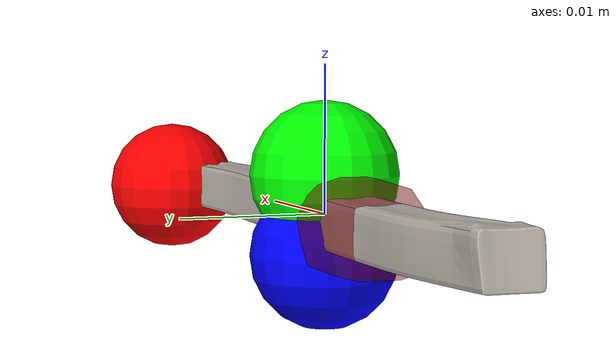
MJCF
<?xml version='1.0' encoding='UTF-8'?>
<mujoco model="model">
  <compiler angle="radian"/>
  <asset>
    <mesh file="visual/CreamCheese003.obj" name="CreamCheese003_vis"/>
    <texture file="visual/T_BC001.png" name="CreamCheese003_material" type="2d"/>
    <material name="CreamCheese003_material" rgba="1 1 1 1.0" texture="CreamCheese003_material" shininess="0.5" specular="0.103448502657381"/>
    <mesh file="collision/CreamCheese003001.obj" name="CreamCheese003001_mesh"/>
  </asset>
  <default>
    <default class="visual">
      <geom conaffinity="0" contype="0" group="1" type="mesh"/>
    </default>
    <default class="collision">
      <geom group="0" rgba="0.5 0 0 0.5"/>
    </default>
    <default class="spawn">
      <geom group="0" rgba="1 1 1 0.5" contype="0" conaffinity="0"/>
      <site group="0" rgba="1 1 1 0.5"/>
    </default>
    <default class="region">
      <geom group="1" conaffinity="0" contype="0" rgba="0 1 0 0"/>
    </default>
  </default>
  <worldbody>
    <body>
      <body name="object">
        <geom mesh="CreamCheese003_vis" type="mesh" solimp="0.998 0.998 0.001" solref="0.001 1" density="100" friction="0.95 0.3 0.1" class="visual" material="CreamCheese003_material"/>
        <geom mesh="CreamCheese003001_mesh" type="mesh" class="collision"/>
      </body>
      <site rgba="1 0 0 1" size="0.005" pos="0.02768222 0.00278291 -3.685999999999963e-05" name="horizontal_radius_site"/>
      <site rgba="0 1 0 1" size="0.005" pos="1.1894999999997929e-05 2.029500000000002e-05 0.0026288000000000006" name="top_site"/>
      <site rgba="0 0 1 1" size="0.005" pos="1.1894999999997929e-05 2.029500000000002e-05 -0.00270252" name="bottom_site"/>
    </body>
  </worldbody>
  <actuator/>
</mujoco>
